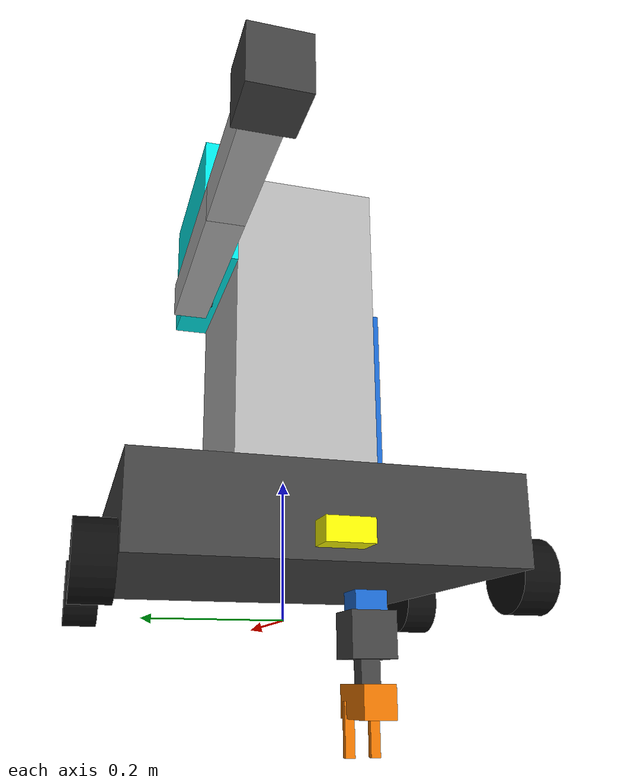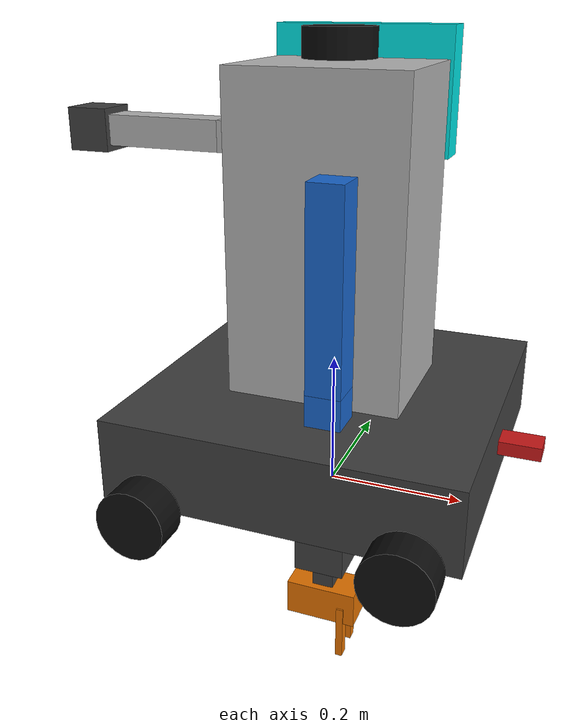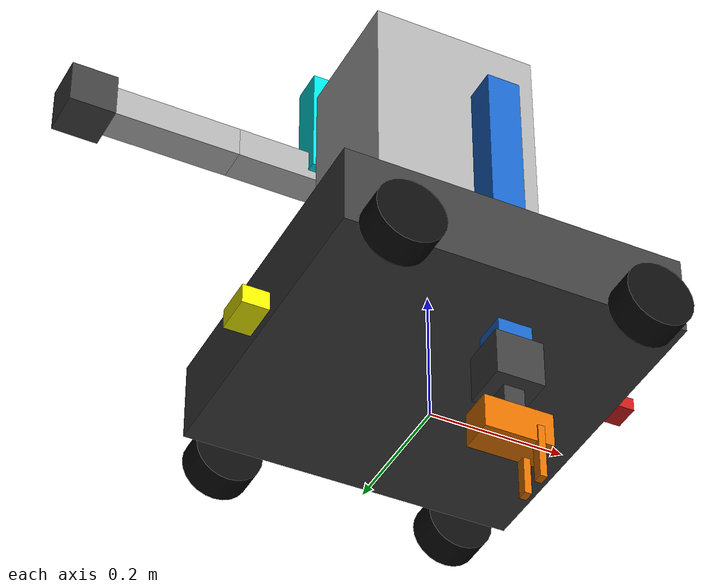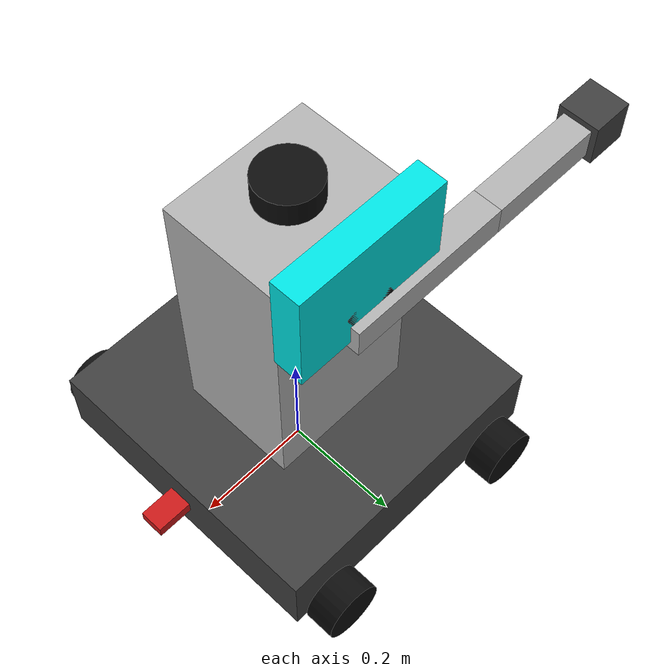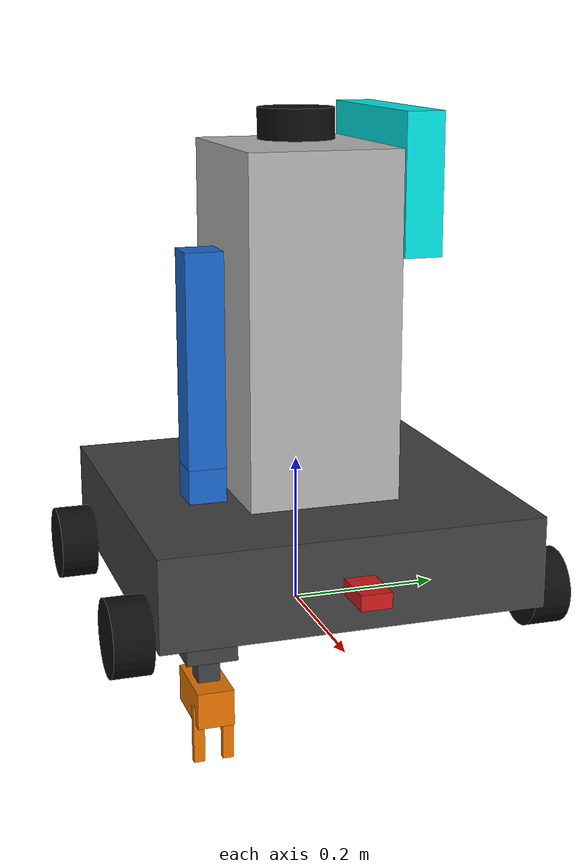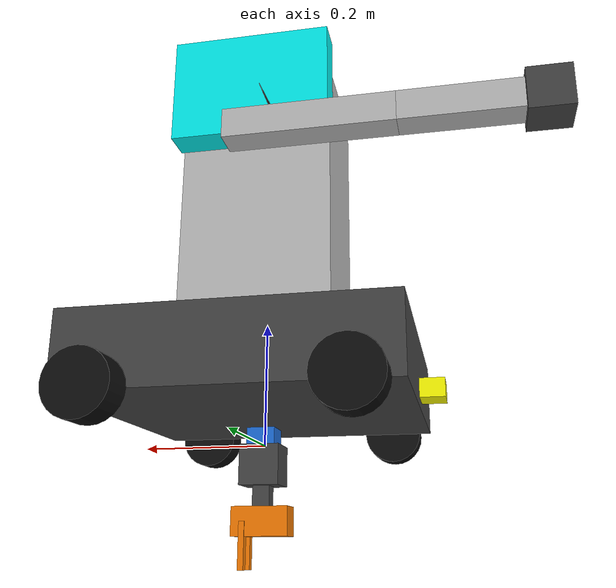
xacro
<?xml version="1.0" encoding="UTF-8"?>

<robot name="tidybot" xmlns:xacro="http://www.ros.org/wiki/xacro">

  <!-- ================================================================
       MATERIALS
       ================================================================ -->

  <material name="dark_grey">  <color rgba="0.25 0.25 0.25 1.0"/> </material>
  <material name="light_grey"> <color rgba="0.70 0.70 0.70 1.0"/> </material>
  <material name="white">      <color rgba="0.95 0.95 0.95 1.0"/> </material>
  <material name="black">      <color rgba="0.05 0.05 0.05 1.0"/> </material>
  <material name="blue">       <color rgba="0.10 0.40 0.80 1.0"/> </material>
  <material name="cyan">       <color rgba="0.00 0.90 0.90 1.0"/> </material>
  <material name="orange">     <color rgba="0.90 0.45 0.00 1.0"/> </material>
  <material name="red">        <color rgba="0.80 0.10 0.10 1.0"/> </material>
  <material name="yellow">     <color rgba="0.95 0.95 0.00 1.0"/> </material>
  <material name="green">      <color rgba="0.10 0.70 0.10 1.0"/> </material>

  <xacro:macro name="box_inertia" params="m w d h">

    <!-- Ixx=m/12*(d^2+h^2)  Iyy=m/12*(w^2+h^2)  Izz=m/12*(w^2+d^2) -->

    <inertial>
      <mass value="${m}"/>
      <inertia
        ixx="${m/12*(d*d+h*h)}" ixy="0" ixz="0"
        iyy="${m/12*(w*w+h*h)}" iyz="0"
        izz="${m/12*(w*w+d*d)}"/>
    </inertial>
  </xacro:macro>

  <xacro:macro name="cyl_inertia_y" params="m r l">

    <!-- axis along y: Ixx=Izz=m/12*(3r^2+l^2)  Iyy=m/2*r^2 -->

    <inertial>
      <mass value="${m}"/>
      <inertia
        ixx="${m/12*(3*r*r+l*l)}" ixy="0" ixz="0"
        iyy="${m/2*r*r}"          iyz="0"
        izz="${m/12*(3*r*r+l*l)}"/>
    </inertial>
  </xacro:macro>

  <xacro:macro name="cyl_inertia_z" params="m r l">

    <!-- axis along z: Ixx=Iyy=m/12*(3r^2+l^2)  Izz=m/2*r^2 -->

    <inertial>
      <mass value="${m}"/>
      <inertia
        ixx="${m/12*(3*r*r+l*l)}" ixy="0" ixz="0"
        iyy="${m/12*(3*r*r+l*l)}" iyz="0"
        izz="${m/2*r*r}"/>
    </inertial>
  </xacro:macro>

  <xacro:macro name="wheel" params="side front reflect_y reflect_x">
    <link name="${side}_${front}_wheel_link">
      <xacro:cyl_inertia_y m="1.0" r="0.05" l="0.05"/>
      <visual>
        <origin xyz="0 0 0" rpy="${pi/2} 0 0"/>
        <geometry><cylinder radius="0.05" length="0.05"/></geometry>
        <material name="black"/>
      </visual>
      <collision>
        <origin xyz="0 0 0" rpy="${pi/2} 0 0"/>
        <geometry><cylinder radius="0.05" length="0.05"/></geometry>
      </collision>
    </link>

    <joint name="${side}_${front}_wheel_joint" type="continuous">
      <parent link="base_link"/>
      <child  link="${side}_${front}_wheel_link"/>

      <!-- x=+/-0.18  y=+/-0.275  z=−0.06 (axle flush with base bottom) -->

      <origin xyz="${reflect_x*0.18} ${reflect_y*0.275} -0.06" rpy="0 0 0"/>
      <axis xyz="0 1 0"/>
      <dynamics damping="0.05" friction="0.5"/>
      <limit effort="20.0" velocity="5.0"/>
    </joint>

    <!-- Gazebo friction / material -->

    <gazebo reference="${side}_${front}_wheel_link">
      <mu1>1.0</mu1>
      <mu2>1.0</mu2>
      <material>Gazebo/Black</material>
    </gazebo>
  </xacro:macro>

  <!-- ================================================================
       COSMETIC (FIXED) ARM MACRO  — left side
       ================================================================ -->
  <xacro:macro name="cosmetic_arm" params="prefix y_sign">

    <link name="${prefix}_upper_arm_link">
      <xacro:box_inertia m="0.5" w="0.05" d="0.05" h="0.28"/>
      <visual>
        <origin xyz="0 0 -0.14" rpy="0 0 0"/>
        <geometry><box size="0.05 0.05 0.28"/></geometry>
        <material name="light_grey"/>
      </visual>
      <collision>
        <origin xyz="0 0 -0.14" rpy="0 0 0"/>
        <geometry><box size="0.05 0.05 0.28"/></geometry>
      </collision>
    </link>
    <joint name="${prefix}_shoulder_joint" type="fixed">
      <parent link="torso_link"/>
      <child  link="${prefix}_upper_arm_link"/>
      <!-- rpy: pitch pi/2 so arm extends forward (+X) instead of hanging
           vertically through the floor at spawn.  Visual only — no physics. -->
      <origin xyz="0.04 ${y_sign*0.14} 0.10" rpy="0 ${pi/2} 0"/>
    </joint>

    <link name="${prefix}_lower_arm_link">
      <xacro:box_inertia m="0.4" w="0.05" d="0.05" h="0.23"/>
      <visual>
        <origin xyz="0 0 -0.115" rpy="0 0 0"/>
        <geometry><box size="0.05 0.05 0.23"/></geometry>
        <material name="light_grey"/>
      </visual>
      <collision>
        <origin xyz="0 0 -0.115" rpy="0 0 0"/>
        <geometry><box size="0.05 0.05 0.23"/></geometry>
      </collision>
    </link>
    <joint name="${prefix}_elbow_joint" type="fixed">
      <parent link="${prefix}_upper_arm_link"/>
      <child  link="${prefix}_lower_arm_link"/>
      <origin xyz="0 0 -0.28" rpy="0 0 0"/>
    </joint>

    <link name="${prefix}_wrist_link">
      <xacro:box_inertia m="0.15" w="0.07" d="0.07" h="0.07"/>
      <visual>
        <origin xyz="0 0 0" rpy="0 0 0"/>
        <geometry><box size="0.07 0.07 0.07"/></geometry>
        <material name="dark_grey"/>
      </visual>
      <collision>
        <origin xyz="0 0 0" rpy="0 0 0"/>
        <geometry><box size="0.07 0.07 0.07"/></geometry>
      </collision>
    </link>
    <joint name="${prefix}_wrist_joint" type="fixed">
      <parent link="${prefix}_lower_arm_link"/>
      <child  link="${prefix}_wrist_link"/>
      <origin xyz="0 0 -0.23" rpy="0 0 0"/>
    </joint>

  </xacro:macro>

  <link name="base_footprint"/>

  <joint name="base_footprint_joint" type="fixed">
    <parent link="base_footprint"/>
    <child  link="base_link"/>
    <!-- base_link at wheel-axle height = wheel_radius + (base_h/2 − wheel_r) = 0.11 m -->
    <origin xyz="0 0 0.11" rpy="0 0 0"/>
  </joint>

  <link name="base_link">
    <xacro:box_inertia m="20.0" w="0.5" d="0.5" h="0.12"/>
    <visual>
      <origin xyz="0 0 0" rpy="0 0 0"/>
      <geometry><box size="0.50 0.50 0.12"/></geometry>
      <material name="dark_grey"/>
    </visual>
    <collision>
      <origin xyz="0 0 0" rpy="0 0 0"/>
      <geometry><box size="0.50 0.50 0.12"/></geometry>
    </collision>
  </link>

  <gazebo reference="base_link">
    <material>Gazebo/DarkGrey</material>
  </gazebo>

  <!-- 4 wheels: front/rear × left/right -->
  <xacro:wheel side="left"  front="front" reflect_y=" 1" reflect_x=" 1"/>
  <xacro:wheel side="right" front="front" reflect_y="-1" reflect_x=" 1"/>
  <xacro:wheel side="left"  front="rear"  reflect_y=" 1" reflect_x="-1"/>
  <xacro:wheel side="right" front="rear"  reflect_y="-1" reflect_x="-1"/>

  <link name="torso_link">
    <xacro:box_inertia m="5.0" w="0.25" d="0.20" h="0.45"/>
    <visual>
      <origin xyz="0 0 0" rpy="0 0 0"/>
      <geometry><box size="0.25 0.20 0.45"/></geometry>
      <material name="light_grey"/>
    </visual>
    <collision>
      <origin xyz="0 0 0" rpy="0 0 0"/>
      <geometry><box size="0.25 0.20 0.45"/></geometry>
    </collision>
  </link>

  <!-- torso bottom at base top → offset = 0.06 + 0.225 = 0.285 in z from base_link -->
  <joint name="torso_joint" type="fixed">
    <parent link="base_link"/>
    <child  link="torso_link"/>
    <origin xyz="0.0 0.0 0.285" rpy="0 0 0"/>
  </joint>

  <gazebo reference="torso_link">
    <material>Gazebo/Grey</material>
  </gazebo>

  <!-- ── Right upper arm ── -->
  <!-- Inertia (m=0.5, w=0.05, d=0.05, h=0.28):
       Ixx=Iyy = 0.5/12*(0.0025+0.0784) = 0.003371
       Izz      = 0.5/12*(0.0025+0.0025) = 0.000208  -->
  <link name="right_upper_arm_link">
    <xacro:box_inertia m="0.5" w="0.05" d="0.05" h="0.28"/>
    <visual>
      <origin xyz="0 0 -0.14" rpy="0 0 0"/>
      <geometry><box size="0.05 0.05 0.28"/></geometry>
      <material name="blue"/>
    </visual>
    <collision>
      <origin xyz="0 0 -0.14" rpy="0 0 0"/>
      <geometry><box size="0.05 0.05 0.28"/></geometry>
    </collision>
  </link>

  <!-- shoulder: mounted right of torso, upper portion -->
  <joint name="right_shoulder_joint" type="revolute">
    <parent link="torso_link"/>
    <child  link="right_upper_arm_link"/>
    <origin xyz="0.04 -0.14 0.10" rpy="0 0 0"/>
    <axis xyz="0 1 0"/>
    <limit lower="-2.094" upper="2.094" effort="50.0" velocity="1.0"/>
    <dynamics damping="0.5" friction="0.1"/>
  </joint>

  <!-- ── Right lower arm ── -->
  <!-- Inertia (m=0.4, w=0.05, d=0.05, h=0.23):
       Ixx=Iyy = 0.4/12*(0.0025+0.0529) = 0.001847
       Izz      = 0.4/12*(0.0025+0.0025) = 0.000167  -->
  <link name="right_lower_arm_link">
    <xacro:box_inertia m="0.4" w="0.05" d="0.05" h="0.23"/>
    <visual>
      <origin xyz="0 0 -0.115" rpy="0 0 0"/>
      <geometry><box size="0.05 0.05 0.23"/></geometry>
      <material name="blue"/>
    </visual>
    <collision>
      <origin xyz="0 0 -0.115" rpy="0 0 0"/>
      <geometry><box size="0.05 0.05 0.23"/></geometry>
    </collision>
  </link>

  <joint name="right_elbow_joint" type="revolute">
    <parent link="right_upper_arm_link"/>
    <child  link="right_lower_arm_link"/>
    <origin xyz="0 0 -0.28" rpy="0 0 0"/>
    <axis xyz="0 1 0"/>
    <limit lower="-2.356" upper="0.0" effort="30.0" velocity="1.2"/>
    <dynamics damping="0.4" friction="0.1"/>
  </joint>

  <!-- ── Right wrist ── -->
  <!-- Inertia (m=0.15, w=0.07, d=0.07, h=0.07):
       Ixx=Iyy=Izz = 0.15/12*(0.0049+0.0049) = 0.0001225  -->
  <link name="right_wrist_link">
    <xacro:box_inertia m="0.15" w="0.07" d="0.07" h="0.07"/>
    <visual>
      <origin xyz="0 0 0" rpy="0 0 0"/>
      <geometry><box size="0.07 0.07 0.07"/></geometry>
      <material name="dark_grey"/>
    </visual>
    <collision>
      <origin xyz="0 0 0" rpy="0 0 0"/>
      <geometry><box size="0.07 0.07 0.07"/></geometry>
    </collision>
  </link>

  <joint name="right_wrist_joint" type="revolute">
    <parent link="right_lower_arm_link"/>
    <child  link="right_wrist_link"/>
    <origin xyz="0 0 -0.23" rpy="0 0 0"/>
    <axis xyz="0 0 1"/>
    <limit lower="-1.571" upper="1.571" effort="15.0" velocity="1.5"/>
    <dynamics damping="0.2" friction="0.05"/>
  </joint>

  <!-- ── Gripper base ── -->
  <!-- Inertia (m=0.15, w=0.10, d=0.05, h=0.05):
       Ixx = 0.15/12*(0.0025+0.0025) = 0.0000625
       Iyy = 0.15/12*(0.01  +0.0025) = 0.0001563
       Izz = 0.15/12*(0.01  +0.0025) = 0.0001563  -->
  <link name="right_gripper_base_link">
    <xacro:box_inertia m="0.15" w="0.10" d="0.05" h="0.05"/>
    <visual>
      <origin xyz="0 0 -0.025" rpy="0 0 0"/>
      <geometry><box size="0.10 0.05 0.05"/></geometry>
      <material name="orange"/>
    </visual>
    <collision>
      <origin xyz="0 0 -0.025" rpy="0 0 0"/>
      <geometry><box size="0.10 0.05 0.05"/></geometry>
    </collision>
  </link>

  <!-- Wrist-to-gripper connector (fills visual gap between wrist cube and gripper palm) -->
  <link name="right_wrist_connector_link">
    <xacro:box_inertia m="0.01" w="0.03" d="0.03" h="0.04"/>
    <visual>
      <origin xyz="0 0 -0.02" rpy="0 0 0"/>
      <geometry><box size="0.03 0.03 0.04"/></geometry>
      <material name="dark_grey"/>
    </visual>
    <collision>
      <origin xyz="0 0 -0.02" rpy="0 0 0"/>
      <geometry><box size="0.03 0.03 0.04"/></geometry>
    </collision>
  </link>
  <joint name="right_wrist_connector_joint" type="fixed">
    <parent link="right_wrist_link"/>
    <child  link="right_wrist_connector_link"/>
    <origin xyz="0 0 -0.035" rpy="0 0 0"/>
  </joint>

  <joint name="right_gripper_base_joint" type="fixed">
    <parent link="right_wrist_link"/>
    <child  link="right_gripper_base_link"/>
    <origin xyz="0 0 -0.07" rpy="0 0 0"/>
  </joint>

  <!-- ── Left finger (prismatic, moves in +y) ── -->
  <!-- Inertia (m=0.05, w=0.01, d=0.015, h=0.08):
       Ixx = 0.05/12*(0.000225+0.0064) = 0.0000274
       Iyy = 0.05/12*(0.0001  +0.0064) = 0.0000270
       Izz = 0.05/12*(0.0001  +0.000225)= 0.00000135  -->
  <link name="right_gripper_left_finger_link">
    <xacro:box_inertia m="0.05" w="0.01" d="0.015" h="0.08"/>
    <visual>
      <origin xyz="0 0 -0.04" rpy="0 0 0"/>
      <geometry><box size="0.01 0.015 0.08"/></geometry>
      <material name="orange"/>
    </visual>
    <collision>
      <origin xyz="0 0 -0.04" rpy="0 0 0"/>
      <geometry><box size="0.01 0.015 0.08"/></geometry>
    </collision>
  </link>

  <joint name="right_gripper_left_finger_joint" type="prismatic">
    <parent link="right_gripper_base_link"/>
    <child  link="right_gripper_left_finger_link"/>
    <origin xyz="0.03 0.02 -0.025" rpy="0 0 0"/>
    <axis xyz="0 1 0"/>
    <limit lower="0.0" upper="0.04" effort="10.0" velocity="0.1"/>
    <dynamics damping="0.1" friction="0.05"/>
  </joint>

  <!-- ── Right finger (prismatic, moves in −y) ── -->
  <link name="right_gripper_right_finger_link">
    <xacro:box_inertia m="0.05" w="0.01" d="0.015" h="0.08"/>
    <visual>
      <origin xyz="0 0 -0.04" rpy="0 0 0"/>
      <geometry><box size="0.01 0.015 0.08"/></geometry>
      <material name="orange"/>
    </visual>
    <collision>
      <origin xyz="0 0 -0.04" rpy="0 0 0"/>
      <geometry><box size="0.01 0.015 0.08"/></geometry>
    </collision>
  </link>

  <joint name="right_gripper_right_finger_joint" type="prismatic">
    <parent link="right_gripper_base_link"/>
    <child  link="right_gripper_right_finger_link"/>
    <origin xyz="0.03 -0.02 -0.025" rpy="0 0 0"/>
    <axis xyz="0 -1 0"/>
    <limit lower="0.0" upper="0.04" effort="10.0" velocity="0.1"/>
    <dynamics damping="0.1" friction="0.05"/>
  </joint>

  <!-- ================================================================
       LEFT ARM  — cosmetic / static (fixed joints)
       ================================================================ -->
  <xacro:cosmetic_arm prefix="left" y_sign="1"/>

  <link name="head_link">
    <xacro:box_inertia m="0.5" w="0.26" d="0.05" h="0.18"/>
    <visual>
      <origin xyz="0 0 0" rpy="0 0 0"/>
      <geometry><box size="0.26 0.05 0.18"/></geometry>
      <material name="cyan"/>
    </visual>
    <collision>
      <origin xyz="0 0 0" rpy="0 0 0"/>
      <geometry><box size="0.26 0.05 0.18"/></geometry>
    </collision>
  </link>

  <!-- head sits on top of torso, forward face -->
  <joint name="head_joint" type="fixed">
    <parent link="torso_link"/>
    <child  link="head_link"/>
    <origin xyz="0.0 0.125 0.18" rpy="0 0 0"/>
  </joint>

  <gazebo reference="head_link">
    <material>Gazebo/Cyan</material>
  </gazebo>

  <!-- ================================================================
       SENSORS
       ================================================================ -->

  <!-- ── RGB-D Camera (sensor_msgs/Image + sensor_msgs/PointCloud2) ── -->
  <link name="camera_link">
    <xacro:box_inertia m="0.10" w="0.07" d="0.04" h="0.07"/>
    <visual>
      <origin xyz="0 0 0" rpy="0 0 0"/>
      <geometry><box size="0.07 0.04 0.07"/></geometry>
      <material name="black"/>
    </visual>
    <collision>
      <origin xyz="0 0 0" rpy="0 0 0"/>
      <geometry><box size="0.07 0.04 0.07"/></geometry>
    </collision>
  </link>

  <joint name="camera_joint" type="fixed">
    <parent link="torso_link"/>
    <child  link="camera_link"/>
    <origin xyz="0.0 0.13 0.13" rpy="0 0.436 0"/>
  </joint>

  <!-- optical frame (z forward, x right, y down) -->
  <link name="camera_optical_link"/>
  <joint name="camera_optical_joint" type="fixed">
    <parent link="camera_link"/>
    <child  link="camera_optical_link"/>
    <origin xyz="0 0 0" rpy="${-pi/2} 0 ${-pi/2}"/>
  </joint>

  <gazebo reference="camera_link">
    <sensor type="depth" name="rgbd_camera">
      <always_on>true</always_on>
      <update_rate>30.0</update_rate>
      <camera>
        <horizontal_fov>1.047</horizontal_fov>
        <image><width>640</width><height>480</height><format>R8G8B8</format></image>
        <clip><near>0.05</near><far>10.0</far></clip>
      </camera>
      <plugin name="rgbd_camera_plugin" filename="libgazebo_ros_camera.so">
        <ros>
          <namespace>/tidybot</namespace>
          <!-- No remapping: default topics are
               /tidybot/rgbd_camera/image_raw  (RGB)
               /tidybot/rgbd_camera/points     (PointCloud2) -->
        </ros>
        <camera_name>rgbd_camera</camera_name>
        <frame_name>camera_optical_link</frame_name>
        <min_depth>0.05</min_depth>
        <max_depth>10.0</max_depth>
      </plugin>
    </sensor>
    <material>Gazebo/Black</material>
  </gazebo>

  <!-- ── 2D LIDAR (sensor_msgs/LaserScan) ── -->
  <!-- Inertia (m=0.3, r=0.05, h=0.04  axis z):
       Ixx=Iyy = 0.3/12*(3*0.0025+0.0016) = 0.000229
       Izz      = 0.3/2*0.0025            = 0.000375  -->
  <link name="lidar_link">
    <xacro:cyl_inertia_z m="0.30" r="0.05" l="0.04"/>
    <visual>
      <origin xyz="0 0 0" rpy="0 0 0"/>
      <geometry><cylinder radius="0.05" length="0.04"/></geometry>
      <material name="black"/>
    </visual>
    <collision>
      <origin xyz="0 0 0" rpy="0 0 0"/>
      <geometry><cylinder radius="0.05" length="0.04"/></geometry>
    </collision>
  </link>

  <joint name="lidar_joint" type="fixed">
    <parent link="torso_link"/>
    <child  link="lidar_link"/>
    <!-- Centered on top of torso: x=0, y=0, z=+0.25 above torso_link -->
    <origin xyz="0.0 0.0 0.25" rpy="0 0 0"/>
  </joint>

  <gazebo reference="lidar_link">
    <sensor type="ray" name="lidar_sensor">
      <always_on>true</always_on>
      <update_rate>10.0</update_rate>
      <ray>
        <scan>
          <horizontal>
            <samples>360</samples>
            <resolution>1</resolution>
            <min_angle>-3.14159</min_angle>
            <max_angle>3.14159</max_angle>
          </horizontal>
        </scan>
        <range><min>0.12</min><max>12.0</max><resolution>0.01</resolution></range>
        <noise><type>gaussian</type><mean>0.0</mean><stddev>0.01</stddev></noise>
      </ray>
      <plugin name="lidar_plugin" filename="libgazebo_ros_ray_sensor.so">
        <ros>
          <namespace>/tidybot</namespace>
          <remapping>~/out:=scan</remapping>
        </ros>
        <output_type>sensor_msgs/LaserScan</output_type>
        <frame_name>lidar_link</frame_name>
      </plugin>
    </sensor>
    <material>Gazebo/Black</material>
  </gazebo>

  <!-- ── IMU (sensor_msgs/Imu) — mounted internally, no visual ── -->
  <link name="imu_link">
    <xacro:box_inertia m="0.05" w="0.04" d="0.04" h="0.04"/>
    <collision>
      <origin xyz="0 0 0" rpy="0 0 0"/>
      <geometry><box size="0.04 0.04 0.04"/></geometry>
    </collision>
  </link>

  <joint name="imu_joint" type="fixed">
    <parent link="base_link"/>
    <child  link="imu_link"/>
    <!-- Mounted inside the base chassis, not visible -->
    <origin xyz="0.0 0.0 0.02" rpy="0 0 0"/>
  </joint>

  <gazebo reference="imu_link">
    <sensor type="imu" name="imu_sensor">
      <always_on>true</always_on>
      <update_rate>100.0</update_rate>
      <plugin name="imu_plugin" filename="libgazebo_ros_imu_sensor.so">
        <ros>
          <namespace>/tidybot</namespace>
          <remapping>~/out:=imu</remapping>
        </ros>
        <initial_orientation_as_reference>false</initial_orientation_as_reference>
        <frame_name>imu_link</frame_name>
      </plugin>
    </sensor>
    <!-- No visual material: IMU is invisible inside base chassis -->
  </gazebo>

  <!-- ── Additional sensor: Bumper / Contact (front) ── -->
  <link name="contact_sensor_link">
    <xacro:box_inertia m="0.05" w="0.08" d="0.04" h="0.02"/>
    <visual>
      <origin xyz="0 0 0" rpy="0 0 0"/>
      <geometry><box size="0.08 0.04 0.02"/></geometry>
      <material name="red"/>
    </visual>
    <collision>
      <origin xyz="0 0 0" rpy="0 0 0"/>
      <geometry><box size="0.08 0.04 0.02"/></geometry>
    </collision>
  </link>

  <joint name="contact_sensor_joint" type="fixed">
    <parent link="base_link"/>
    <child  link="contact_sensor_link"/>
    <origin xyz="0.27 0.0 0.0" rpy="0 0 0"/>
  </joint>

  <gazebo reference="contact_sensor_link">
    <sensor type="contact" name="bumper_sensor">
      <always_on>true</always_on>
      <update_rate>50.0</update_rate>
      <contact><collision>contact_sensor_link_collision</collision></contact>
      <plugin name="bumper_plugin" filename="libgazebo_ros_bumper.so">
        <ros>
          <namespace>/tidybot</namespace>
          <remapping>bumper_states:=contact</remapping>
        </ros>
        <frame_name>contact_sensor_link</frame_name>
      </plugin>
    </sensor>
    <material>Gazebo/Red</material>
  </gazebo>

  <!-- ── Additional sensor: Ultrasonic (front-low, obstacle detection) ── -->
  <!-- ── Ultrasonic: REAR (faces backward, -X direction) ── -->
  <link name="ultrasonic_link">
    <xacro:box_inertia m="0.05" w="0.06" d="0.03" h="0.03"/>
    <visual>
      <!-- A clearly visible yellow disc/box on the rear face -->
      <origin xyz="0 0 0" rpy="0 0 0"/>
      <geometry><box size="0.06 0.06 0.03"/></geometry>
      <material name="yellow"/>
    </visual>
    <collision>
      <origin xyz="0 0 0" rpy="0 0 0"/>
      <geometry><box size="0.06 0.06 0.03"/></geometry>
    </collision>
  </link>

  <joint name="ultrasonic_joint" type="fixed">
    <parent link="base_link"/>
    <child  link="ultrasonic_link"/>
    <!-- Mounted on rear face of base, pointing backward (-X = ${pi} yaw) -->
    <origin xyz="-0.26 0.0 -0.03" rpy="0 0 ${pi}"/>
  </joint>

  <gazebo reference="ultrasonic_link">
    <sensor type="ray" name="ultrasonic_sensor">
      <always_on>true</always_on>
      <update_rate>20.0</update_rate>
      <ray>
        <scan><horizontal><samples>5</samples><resolution>1</resolution>
          <min_angle>-0.087</min_angle><max_angle>0.087</max_angle>
        </horizontal></scan>
        <range><min>0.02</min><max>4.0</max><resolution>0.01</resolution></range>
      </ray>
      <plugin name="ultrasonic_plugin" filename="libgazebo_ros_ray_sensor.so">
        <ros>
          <namespace>/tidybot</namespace>
          <remapping>~/out:=ultrasonic</remapping>
        </ros>
        <output_type>sensor_msgs/LaserScan</output_type>
        <frame_name>ultrasonic_link</frame_name>
      </plugin>
    </sensor>
    <material>Gazebo/Yellow</material>
  </gazebo>

  <!-- ── Ultrasonic: LEFT ── -->
  <link name="ultrasonic_left_link">
    <xacro:box_inertia m="0.05" w="0.04" d="0.04" h="0.02"/>
    <visual>
      <origin xyz="0 0 0" rpy="0 0 0"/>
      <geometry><box size="0.04 0.04 0.02"/></geometry>
      <material name="yellow"/>
    </visual>
    <collision>
      <origin xyz="0 0 0" rpy="0 0 0"/>
      <geometry><box size="0.04 0.04 0.02"/></geometry>
    </collision>
  </link>

  <joint name="ultrasonic_left_joint" type="fixed">
    <parent link="base_link"/>
    <child  link="ultrasonic_left_link"/>
    <!-- Left side of base, pointing +Y (left) -->
    <origin xyz="0.0 0.20 -0.03" rpy="0 0 ${pi/2}"/>
  </joint>

  <gazebo reference="ultrasonic_left_link">
    <sensor type="ray" name="ultrasonic_left_sensor">
      <always_on>true</always_on>
      <update_rate>20.0</update_rate>
      <ray>
        <scan><horizontal><samples>5</samples><resolution>1</resolution>
          <min_angle>-0.087</min_angle><max_angle>0.087</max_angle>
        </horizontal></scan>
        <range><min>0.02</min><max>4.0</max><resolution>0.01</resolution></range>
      </ray>
      <plugin name="ultrasonic_left_plugin" filename="libgazebo_ros_ray_sensor.so">
        <ros>
          <namespace>/tidybot</namespace>
          <remapping>~/out:=ultrasonic_left</remapping>
        </ros>
        <output_type>sensor_msgs/LaserScan</output_type>
        <frame_name>ultrasonic_left_link</frame_name>
      </plugin>
    </sensor>
    <material>Gazebo/Yellow</material>
  </gazebo>

  <!-- ── Ultrasonic: RIGHT ── -->
  <link name="ultrasonic_right_link">
    <xacro:box_inertia m="0.05" w="0.04" d="0.04" h="0.02"/>
    <visual>
      <origin xyz="0 0 0" rpy="0 0 0"/>
      <geometry><box size="0.04 0.04 0.02"/></geometry>
      <material name="yellow"/>
    </visual>
    <collision>
      <origin xyz="0 0 0" rpy="0 0 0"/>
      <geometry><box size="0.04 0.04 0.02"/></geometry>
    </collision>
  </link>

  <joint name="ultrasonic_right_joint" type="fixed">
    <parent link="base_link"/>
    <child  link="ultrasonic_right_link"/>
    <!-- Right side of base, pointing -Y (right) -->
    <origin xyz="0.0 -0.20 -0.03" rpy="0 0 ${-pi/2}"/>
  </joint>

  <gazebo reference="ultrasonic_right_link">
    <sensor type="ray" name="ultrasonic_right_sensor">
      <always_on>true</always_on>
      <update_rate>20.0</update_rate>
      <ray>
        <scan><horizontal><samples>5</samples><resolution>1</resolution>
          <min_angle>-0.087</min_angle><max_angle>0.087</max_angle>
        </horizontal></scan>
        <range><min>0.02</min><max>4.0</max><resolution>0.01</resolution></range>
      </ray>
      <plugin name="ultrasonic_right_plugin" filename="libgazebo_ros_ray_sensor.so">
        <ros>
          <namespace>/tidybot</namespace>
          <remapping>~/out:=ultrasonic_right</remapping>
        </ros>
        <output_type>sensor_msgs/LaserScan</output_type>
        <frame_name>ultrasonic_right_link</frame_name>
      </plugin>
    </sensor>
    <material>Gazebo/Yellow</material>
  </gazebo>

  <gazebo>
    <plugin name="joint_pose_trajectory"
            filename="libgazebo_ros_joint_pose_trajectory.so">
      <ros>
        <namespace>/tidybot</namespace>
        <remapping>set_joint_trajectory:=set_joint_trajectory</remapping>
      </ros>
      <update_rate>2</update_rate>
    </plugin>
  </gazebo>

  <!-- GAZEBO — Joint state publisher (arm + gripper joints) -->
  <gazebo>
    <plugin name="joint_state_publisher"
            filename="libgazebo_ros_joint_state_publisher.so">
      <ros>
        <namespace>/tidybot</namespace>
        <remapping>joint_states:=joint_states</remapping>
      </ros>
      <update_rate>30</update_rate>
      <joint_name>right_shoulder_joint</joint_name>
      <joint_name>right_elbow_joint</joint_name>
      <joint_name>right_wrist_joint</joint_name>
      <joint_name>right_gripper_left_finger_joint</joint_name>
      <joint_name>right_gripper_right_finger_joint</joint_name>
    </plugin>
  </gazebo>

  <!-- Arm spawn: shoulder 70° forward (arm extends diagonally forward-up),
       elbow -0.4 rad (bend back). Arm stays above chassis, no collisions. -->
  <gazebo reference="right_shoulder_joint">
    <initial_angle>1.22</initial_angle>
  </gazebo>
  <gazebo reference="right_elbow_joint">
    <initial_angle>-0.4</initial_angle>
  </gazebo>

  <!-- GAZEBO — Skid-steer drive plugin
       ================================================================ -->
  <gazebo>
    <plugin name="skid_steer_drive" filename="libgazebo_ros_diff_drive.so">
      <ros>
        <namespace>/tidybot</namespace>
        <!-- Absolute remapping: Nav2 publishes /cmd_vel; diff_drive must match -->
        <remapping>cmd_vel:=/cmd_vel</remapping>
        <remapping>odom:=odom</remapping>
      </ros>
      <num_wheel_pairs>2</num_wheel_pairs>
      <!-- pair 1: front wheels -->
      <left_joint>left_front_wheel_joint</left_joint>
      <right_joint>right_front_wheel_joint</right_joint>
      <!-- pair 2: rear wheels -->
      <left_joint>left_rear_wheel_joint</left_joint>
      <right_joint>right_rear_wheel_joint</right_joint>

      <wheel_separation>0.55</wheel_separation>
      <wheel_diameter>0.10</wheel_diameter>
      <max_wheel_torque>20.0</max_wheel_torque>
      <max_wheel_acceleration>1.0</max_wheel_acceleration>
      <publish_odom>true</publish_odom>
      <publish_odom_tf>true</publish_odom_tf>
      <publish_wheel_tf>true</publish_wheel_tf>
      <odometry_frame>odom</odometry_frame>
      <robot_base_frame>base_footprint</robot_base_frame>
    </plugin>
  </gazebo>

</robot>
